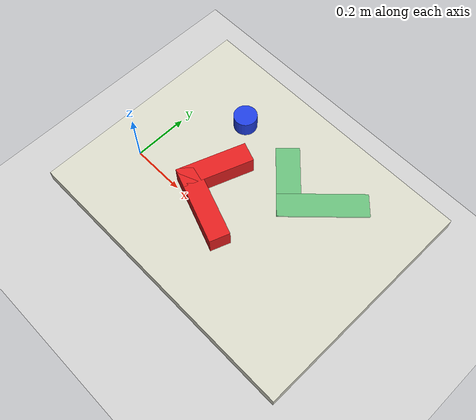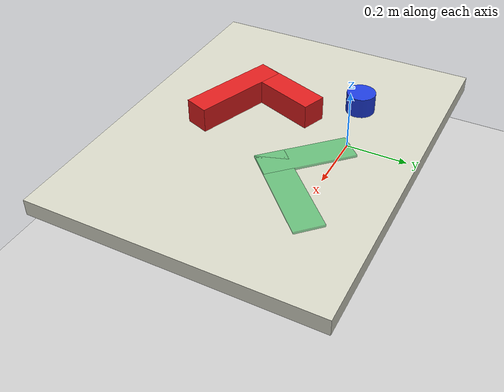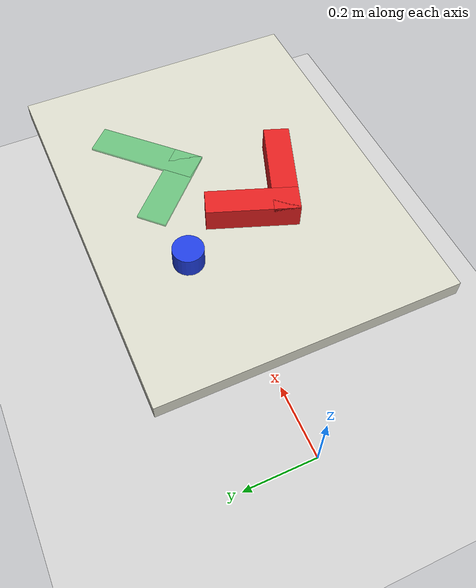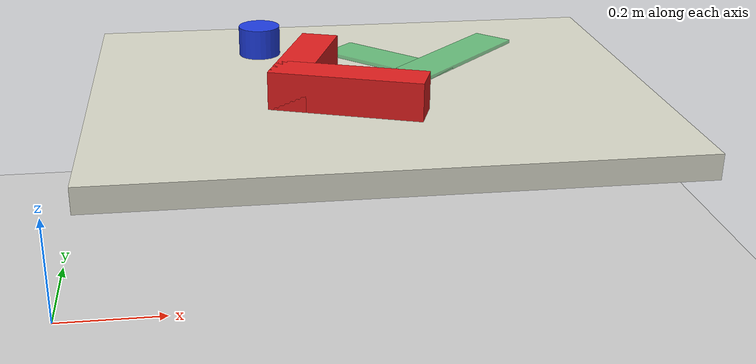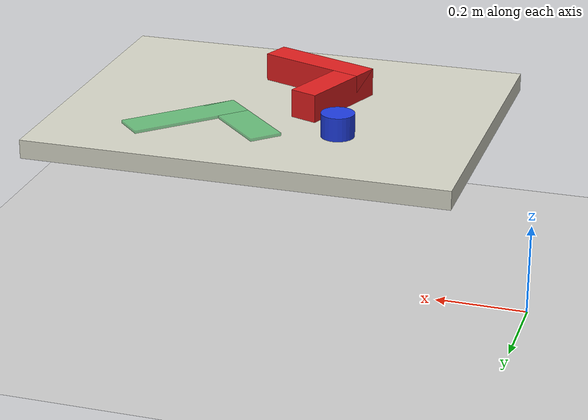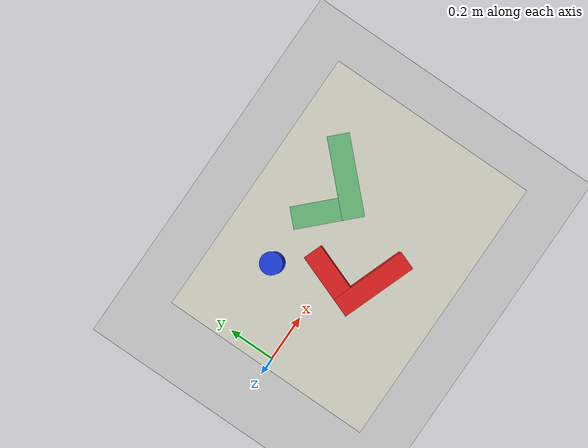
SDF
<?xml version="1.0" ?>
<sdf version="1.6">
  <world name="pusht">
    <physics name="default_physics" default="0" type="ode">
      <gravity>0 0 -9.8066</gravity>
      <ode>
        <solver>
          <iters>40</iters>
          <sor>1.3</sor>
        </solver>
        <constraints>
          <cfm>0</cfm>
          <erp>0.2</erp>
        </constraints>
      </ode>
      <max_step_size>0.005</max_step_size>
      <real_time_factor>1.0</real_time_factor>
    </physics>

    <scene>
      <ambient>0.55 0.55 0.55</ambient>
      <background>0.72 0.76 0.80</background>
    </scene>

    <include>
      <uri>model://ground plane</uri>
    </include>

    <include>
      <uri>model://sun</uri>
    </include>

    <!-- Push-T work surface. The robot is spawned at the world origin by simulation.launch.py. -->
    <model name="pusht_table">
      <static>true</static>
      <pose>0.55 0 0.39 0 0 0</pose>
      <link name="table_link">
        <collision name="table_collision">
          <geometry>
            <box>
              <size>0.90 0.70 0.04</size>
            </box>
          </geometry>
          <surface>
            <friction>
              <ode>
                <mu>0.9</mu>
                <mu2>0.9</mu2>
              </ode>
            </friction>
          </surface>
        </collision>
        <visual name="table_visual">
          <geometry>
            <box>
              <size>0.90 0.70 0.04</size>
            </box>
          </geometry>
          <material>
            <ambient>0.84 0.84 0.78 1</ambient>
            <diffuse>0.84 0.84 0.78 1</diffuse>
          </material>
        </visual>
      </link>
    </model>

    <!-- Green target region. This is visual-only so it does not disturb pushing dynamics. -->
    <model name="pusht_target_zone">
      <static>true</static>
      <pose>0.72 0.13 0.413 0 0 0.7853981634</pose>
      <link name="target_link">
        <visual name="target_bar_long">
          <pose>0 0 0 0 0 0</pose>
          <geometry>
            <box>
              <size>0.26 0.07 0.006</size>
            </box>
          </geometry>
          <material>
            <ambient>0.10 0.70 0.28 0.55</ambient>
            <diffuse>0.10 0.70 0.28 0.55</diffuse>
          </material>
        </visual>
        <visual name="target_bar_short">
          <pose>-0.095 0.075 0 0 0 0</pose>
          <geometry>
            <box>
              <size>0.07 0.22 0.006</size>
            </box>
          </geometry>
          <material>
            <ambient>0.10 0.70 0.28 0.55</ambient>
            <diffuse>0.10 0.70 0.28 0.55</diffuse>
          </material>
        </visual>
      </link>
    </model>

    <!-- Movable T block used by the Push-T task. -->
    <model name="pusht_t_block">
      <static>false</static>
      <pose>0.50 -0.12 0.445 0 0 -0.35</pose>
      <link name="t_block_link">
        <inertial>
          <mass>0.25</mass>
          <inertia>
            <ixx>0.0012</ixx>
            <iyy>0.0012</iyy>
            <izz>0.0018</izz>
            <ixy>0</ixy>
            <ixz>0</ixz>
            <iyz>0</iyz>
          </inertia>
        </inertial>
        <collision name="bar_long_collision">
          <pose>0 0 0 0 0 0</pose>
          <geometry>
            <box>
              <size>0.24 0.06 0.06</size>
            </box>
          </geometry>
          <surface>
            <friction>
              <ode>
                <mu>0.65</mu>
                <mu2>0.65</mu2>
              </ode>
            </friction>
          </surface>
        </collision>
        <collision name="bar_short_collision">
          <pose>-0.09 0.075 0 0 0 0</pose>
          <geometry>
            <box>
              <size>0.06 0.21 0.06</size>
            </box>
          </geometry>
          <surface>
            <friction>
              <ode>
                <mu>0.65</mu>
                <mu2>0.65</mu2>
              </ode>
            </friction>
          </surface>
        </collision>
        <visual name="bar_long_visual">
          <pose>0 0 0 0 0 0</pose>
          <geometry>
            <box>
              <size>0.24 0.06 0.06</size>
            </box>
          </geometry>
          <material>
            <ambient>0.88 0.12 0.12 1</ambient>
            <diffuse>0.88 0.12 0.12 1</diffuse>
          </material>
        </visual>
        <visual name="bar_short_visual">
          <pose>-0.09 0.075 0 0 0 0</pose>
          <geometry>
            <box>
              <size>0.06 0.21 0.06</size>
            </box>
          </geometry>
          <material>
            <ambient>0.88 0.12 0.12 1</ambient>
            <diffuse>0.88 0.12 0.12 1</diffuse>
          </material>
        </visual>
      </link>
    </model>

    <!-- Small movable puck for early planar pushing tests before using the T block. -->
    <model name="pusht_debug_puck">
      <static>false</static>
      <pose>0.38 0.16 0.445 0 0 0</pose>
      <link name="puck_link">
        <inertial>
          <mass>0.12</mass>
          <inertia>
            <ixx>0.0002</ixx>
            <iyy>0.0002</iyy>
            <izz>0.0002</izz>
            <ixy>0</ixy>
            <ixz>0</ixz>
            <iyz>0</iyz>
          </inertia>
        </inertial>
        <collision name="puck_collision">
          <geometry>
            <cylinder>
              <radius>0.035</radius>
              <length>0.05</length>
            </cylinder>
          </geometry>
          <surface>
            <friction>
              <ode>
                <mu>0.55</mu>
                <mu2>0.55</mu2>
              </ode>
            </friction>
          </surface>
        </collision>
        <visual name="puck_visual">
          <geometry>
            <cylinder>
              <radius>0.035</radius>
              <length>0.05</length>
            </cylinder>
          </geometry>
          <material>
            <ambient>0.12 0.24 0.88 1</ambient>
            <diffuse>0.12 0.24 0.88 1</diffuse>
          </material>
        </visual>
      </link>
    </model>
  </world>
</sdf>
